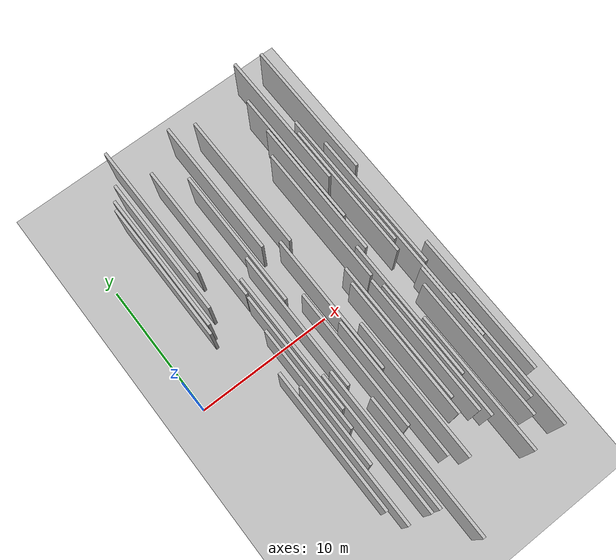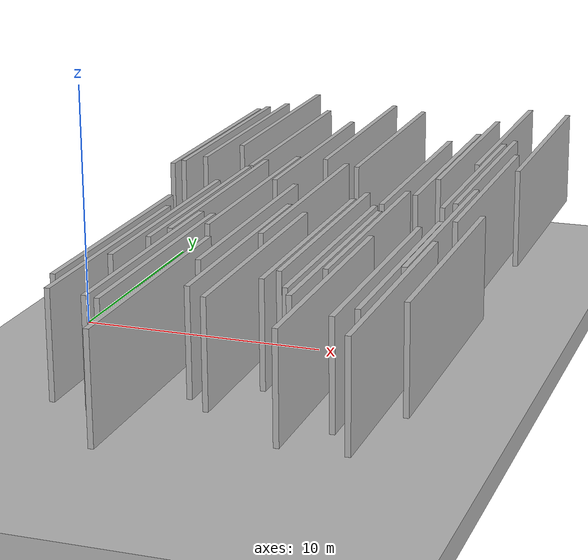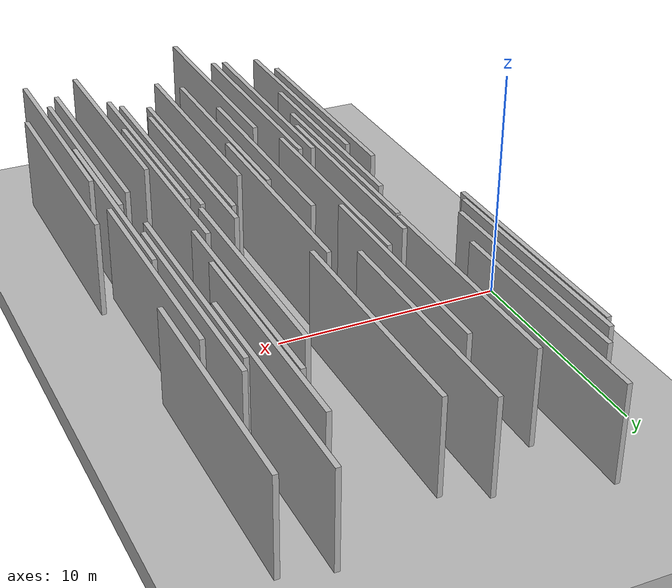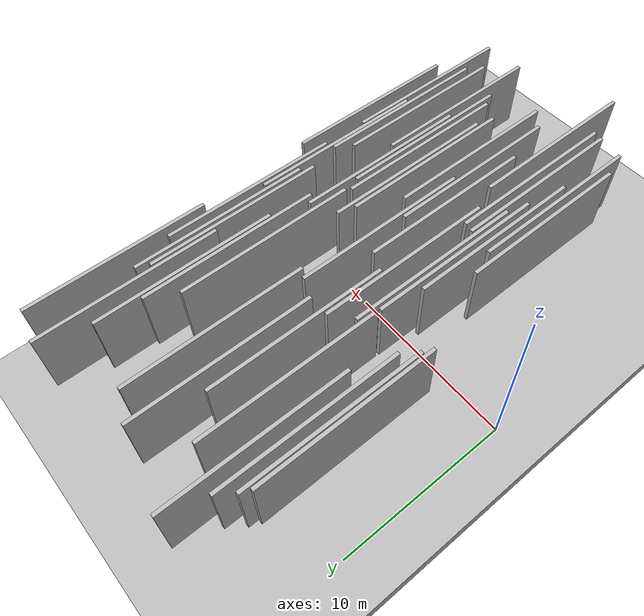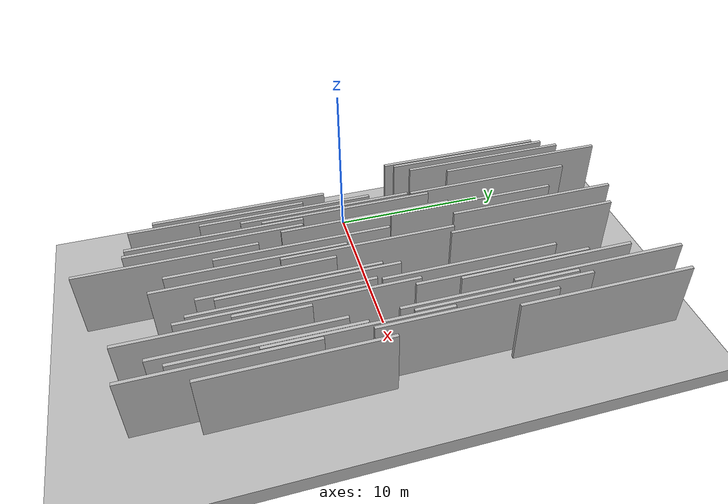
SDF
<?xml version="1.0" encoding="utf-8"?>

<sdf version="1.6">

   <world name="default">

      <gui fullscreen="0">

         <camera name="user_camera">

            <pose>-15 0 4.57585 0 0 0</pose>

            <view_controller>orbit</view_controller>

         </camera>

      </gui>

      <scene>

         <sky>

           <clouds>

             <speed>12</speed>

           </clouds>

         </sky>

         <ambient>0.4 0.4 0.4 1</ambient>

         <background>0.7 0.7 0.7 1</background>

         <shadows>1</shadows>

      </scene>

      <gravity>0 0 -9.8066</gravity>

      <magnetic_field>6e-06 2.3e-05 -4.2e-05</magnetic_field>

      <physics default="0" name="default_physics" type="ode">

         <ode>

            <solver>

               <type>quick</type>

               <iters>10</iters>

               <sor>1.0</sor>

               <use_dynamic_moi_rescaling>0</use_dynamic_moi_rescaling>

            </solver>

            <constraints>

               <cfm>0</cfm>

               <erp>0.2</erp>

               <contact_max_correcting_vel>100</contact_max_correcting_vel>

               <contact_surface_layer>0.001</contact_surface_layer>

            </constraints>

         </ode>

         <max_step_size>0.004</max_step_size>

         <real_time_factor>1</real_time_factor>

         <real_time_update_rate>250</real_time_update_rate>

      </physics>

      <light name="sun" type="directional">

         <cast_shadows>1</cast_shadows>

         <pose>0 0 10 0 0 0</pose>

         <diffuse>0.8 0.8 0.8 1</diffuse>

         <specular>0.2 0.2 0.2 1</specular>

         <attenuation>

            <range>1000</range>

            <constant>0.9</constant>

            <linear>0.01</linear>

            <quadratic>0.001</quadratic>

         </attenuation>

         <direction>-0.5 0.1 -0.9</direction>

      </light>

      <include>

         <name>ground_plane_1</name>

         <uri>model://HANNAS_ground_plane</uri>

         <pose>0 0 0  0 0 0</pose>

      </include>

      <include>

         <name>ground_plane_2</name>

         <uri>model://HANNAS_ground_plane</uri>

         <pose>100 0 0  0 0 0</pose>

      </include>

      <model name="HANNAS_wall_1">

         <static>1</static>

         <pose frame="">5.2713 -8.5533 2.5 0.000000 0.000000 1.570796</pose>

         <link name="link">

            <pose frame="">0 0 2.00 0 0 0</pose>

            <collision name="collision">

               <geometry>

                  <box>

                     <size>10.00 0.2 4.00</size>

                  </box>

               </geometry>

               <max_contacts>10</max_contacts>

               <surface>

                  <contact>

                     <ode/>

                  </contact>

                  <bounce/>

                  <friction>

                     <torsional>

                        <ode/>

                     </torsional>

                     <ode/>

                  </friction>

               </surface>

            </collision>

            <visual name="visual">

               <cast_shadows>0</cast_shadows>

               <geometry>

                  <box>

                     <size>10.00 0.2 4.00</size>

                  </box>

               </geometry>

               <material>

                  <script>

                     <uri>model://HANNAS_wall/materials/scripts</uri>

                     <uri>model://HANNAS_wall/materials/textures</uri>

                     <name>vrc/HANNAS_wall</name>

                  </script>

               </material>

            </visual>

            <self_collide>0</self_collide>

            <enable_wind>0</enable_wind>

            <kinematic>0</kinematic>

         </link>

      </model>

      <model name="HANNAS_wall_2">

         <static>1</static>

         <pose frame="">3.8967 8.5115 2.5 0.000000 0.000000 1.570796</pose>

         <link name="link">

            <pose frame="">0 0 2.00 0 0 0</pose>

            <collision name="collision">

               <geometry>

                  <box>

                     <size>10.00 0.2 4.00</size>

                  </box>

               </geometry>

               <max_contacts>10</max_contacts>

               <surface>

                  <contact>

                     <ode/>

                  </contact>

                  <bounce/>

                  <friction>

                     <torsional>

                        <ode/>

                     </torsional>

                     <ode/>

                  </friction>

               </surface>

            </collision>

            <visual name="visual">

               <cast_shadows>0</cast_shadows>

               <geometry>

                  <box>

                     <size>10.00 0.2 4.00</size>

                  </box>

               </geometry>

               <material>

                  <script>

                     <uri>model://HANNAS_wall/materials/scripts</uri>

                     <uri>model://HANNAS_wall/materials/textures</uri>

                     <name>vrc/HANNAS_wall</name>

                  </script>

               </material>

            </visual>

            <self_collide>0</self_collide>

            <enable_wind>0</enable_wind>

            <kinematic>0</kinematic>

         </link>

      </model>

      <model name="HANNAS_wall_3">

         <static>1</static>

         <pose frame="">16.6424 10.2966 2.5 0.000000 0.000000 1.570796</pose>

         <link name="link">

            <pose frame="">0 0 2.00 0 0 0</pose>

            <collision name="collision">

               <geometry>

                  <box>

                     <size>10.00 0.2 4.00</size>

                  </box>

               </geometry>

               <max_contacts>10</max_contacts>

               <surface>

                  <contact>

                     <ode/>

                  </contact>

                  <bounce/>

                  <friction>

                     <torsional>

                        <ode/>

                     </torsional>

                     <ode/>

                  </friction>

               </surface>

            </collision>

            <visual name="visual">

               <cast_shadows>0</cast_shadows>

               <geometry>

                  <box>

                     <size>10.00 0.2 4.00</size>

                  </box>

               </geometry>

               <material>

                  <script>

                     <uri>model://HANNAS_wall/materials/scripts</uri>

                     <uri>model://HANNAS_wall/materials/textures</uri>

                     <name>vrc/HANNAS_wall</name>

                  </script>

               </material>

            </visual>

            <self_collide>0</self_collide>

            <enable_wind>0</enable_wind>

            <kinematic>0</kinematic>

         </link>

      </model>

      <model name="HANNAS_wall_4">

         <static>1</static>

         <pose frame="">8.7333 9.6387 2.5 0.000000 0.000000 1.570796</pose>

         <link name="link">

            <pose frame="">0 0 2.00 0 0 0</pose>

            <collision name="collision">

               <geometry>

                  <box>

                     <size>10.00 0.2 4.00</size>

                  </box>

               </geometry>

               <max_contacts>10</max_contacts>

               <surface>

                  <contact>

                     <ode/>

                  </contact>

                  <bounce/>

                  <friction>

                     <torsional>

                        <ode/>

                     </torsional>

                     <ode/>

                  </friction>

               </surface>

            </collision>

            <visual name="visual">

               <cast_shadows>0</cast_shadows>

               <geometry>

                  <box>

                     <size>10.00 0.2 4.00</size>

                  </box>

               </geometry>

               <material>

                  <script>

                     <uri>model://HANNAS_wall/materials/scripts</uri>

                     <uri>model://HANNAS_wall/materials/textures</uri>

                     <name>vrc/HANNAS_wall</name>

                  </script>

               </material>

            </visual>

            <self_collide>0</self_collide>

            <enable_wind>0</enable_wind>

            <kinematic>0</kinematic>

         </link>

      </model>

      <model name="HANNAS_wall_5">

         <static>1</static>

         <pose frame="">9.7830 -0.7278 2.5 0.000000 0.000000 1.570796</pose>

         <link name="link">

            <pose frame="">0 0 2.00 0 0 0</pose>

            <collision name="collision">

               <geometry>

                  <box>

                     <size>10.00 0.2 4.00</size>

                  </box>

               </geometry>

               <max_contacts>10</max_contacts>

               <surface>

                  <contact>

                     <ode/>

                  </contact>

                  <bounce/>

                  <friction>

                     <torsional>

                        <ode/>

                     </torsional>

                     <ode/>

                  </friction>

               </surface>

            </collision>

            <visual name="visual">

               <cast_shadows>0</cast_shadows>

               <geometry>

                  <box>

                     <size>10.00 0.2 4.00</size>

                  </box>

               </geometry>

               <material>

                  <script>

                     <uri>model://HANNAS_wall/materials/scripts</uri>

                     <uri>model://HANNAS_wall/materials/textures</uri>

                     <name>vrc/HANNAS_wall</name>

                  </script>

               </material>

            </visual>

            <self_collide>0</self_collide>

            <enable_wind>0</enable_wind>

            <kinematic>0</kinematic>

         </link>

      </model>

      <model name="HANNAS_wall_6">

         <static>1</static>

         <pose frame="">11.8643 -4.5365 2.5 0.000000 0.000000 1.570796</pose>

         <link name="link">

            <pose frame="">0 0 2.00 0 0 0</pose>

            <collision name="collision">

               <geometry>

                  <box>

                     <size>10.00 0.2 4.00</size>

                  </box>

               </geometry>

               <max_contacts>10</max_contacts>

               <surface>

                  <contact>

                     <ode/>

                  </contact>

                  <bounce/>

                  <friction>

                     <torsional>

                        <ode/>

                     </torsional>

                     <ode/>

                  </friction>

               </surface>

            </collision>

            <visual name="visual">

               <cast_shadows>0</cast_shadows>

               <geometry>

                  <box>

                     <size>10.00 0.2 4.00</size>

                  </box>

               </geometry>

               <material>

                  <script>

                     <uri>model://HANNAS_wall/materials/scripts</uri>

                     <uri>model://HANNAS_wall/materials/textures</uri>

                     <name>vrc/HANNAS_wall</name>

                  </script>

               </material>

            </visual>

            <self_collide>0</self_collide>

            <enable_wind>0</enable_wind>

            <kinematic>0</kinematic>

         </link>

      </model>

      <model name="HANNAS_wall_7">

         <static>1</static>

         <pose frame="">9.5290 -6.9343 2.5 0.000000 0.000000 1.570796</pose>

         <link name="link">

            <pose frame="">0 0 2.00 0 0 0</pose>

            <collision name="collision">

               <geometry>

                  <box>

                     <size>10.00 0.2 4.00</size>

                  </box>

               </geometry>

               <max_contacts>10</max_contacts>

               <surface>

                  <contact>

                     <ode/>

                  </contact>

                  <bounce/>

                  <friction>

                     <torsional>

                        <ode/>

                     </torsional>

                     <ode/>

                  </friction>

               </surface>

            </collision>

            <visual name="visual">

               <cast_shadows>0</cast_shadows>

               <geometry>

                  <box>

                     <size>10.00 0.2 4.00</size>

                  </box>

               </geometry>

               <material>

                  <script>

                     <uri>model://HANNAS_wall/materials/scripts</uri>

                     <uri>model://HANNAS_wall/materials/textures</uri>

                     <name>vrc/HANNAS_wall</name>

                  </script>

               </material>

            </visual>

            <self_collide>0</self_collide>

            <enable_wind>0</enable_wind>

            <kinematic>0</kinematic>

         </link>

      </model>

      <model name="HANNAS_wall_8">

         <static>1</static>

         <pose frame="">3.0202 7.1427 2.5 0.000000 0.000000 1.570796</pose>

         <link name="link">

            <pose frame="">0 0 2.00 0 0 0</pose>

            <collision name="collision">

               <geometry>

                  <box>

                     <size>10.00 0.2 4.00</size>

                  </box>

               </geometry>

               <max_contacts>10</max_contacts>

               <surface>

                  <contact>

                     <ode/>

                  </contact>

                  <bounce/>

                  <friction>

                     <torsional>

                        <ode/>

                     </torsional>

                     <ode/>

                  </friction>

               </surface>

            </collision>

            <visual name="visual">

               <cast_shadows>0</cast_shadows>

               <geometry>

                  <box>

                     <size>10.00 0.2 4.00</size>

                  </box>

               </geometry>

               <material>

                  <script>

                     <uri>model://HANNAS_wall/materials/scripts</uri>

                     <uri>model://HANNAS_wall/materials/textures</uri>

                     <name>vrc/HANNAS_wall</name>

                  </script>

               </material>

            </visual>

            <self_collide>0</self_collide>

            <enable_wind>0</enable_wind>

            <kinematic>0</kinematic>

         </link>

      </model>

      <model name="HANNAS_wall_9">

         <static>1</static>

         <pose frame="">8.1527 -11.6367 2.5 0.000000 0.000000 1.570796</pose>

         <link name="link">

            <pose frame="">0 0 2.00 0 0 0</pose>

            <collision name="collision">

               <geometry>

                  <box>

                     <size>10.00 0.2 4.00</size>

                  </box>

               </geometry>

               <max_contacts>10</max_contacts>

               <surface>

                  <contact>

                     <ode/>

                  </contact>

                  <bounce/>

                  <friction>

                     <torsional>

                        <ode/>

                     </torsional>

                     <ode/>

                  </friction>

               </surface>

            </collision>

            <visual name="visual">

               <cast_shadows>0</cast_shadows>

               <geometry>

                  <box>

                     <size>10.00 0.2 4.00</size>

                  </box>

               </geometry>

               <material>

                  <script>

                     <uri>model://HANNAS_wall/materials/scripts</uri>

                     <uri>model://HANNAS_wall/materials/textures</uri>

                     <name>vrc/HANNAS_wall</name>

                  </script>

               </material>

            </visual>

            <self_collide>0</self_collide>

            <enable_wind>0</enable_wind>

            <kinematic>0</kinematic>

         </link>

      </model>

      <model name="HANNAS_wall_10">

         <static>1</static>

         <pose frame="">13.0097 -6.7541 2.5 0.000000 0.000000 1.570796</pose>

         <link name="link">

            <pose frame="">0 0 2.00 0 0 0</pose>

            <collision name="collision">

               <geometry>

                  <box>

                     <size>10.00 0.2 4.00</size>

                  </box>

               </geometry>

               <max_contacts>10</max_contacts>

               <surface>

                  <contact>

                     <ode/>

                  </contact>

                  <bounce/>

                  <friction>

                     <torsional>

                        <ode/>

                     </torsional>

                     <ode/>

                  </friction>

               </surface>

            </collision>

            <visual name="visual">

               <cast_shadows>0</cast_shadows>

               <geometry>

                  <box>

                     <size>10.00 0.2 4.00</size>

                  </box>

               </geometry>

               <material>

                  <script>

                     <uri>model://HANNAS_wall/materials/scripts</uri>

                     <uri>model://HANNAS_wall/materials/textures</uri>

                     <name>vrc/HANNAS_wall</name>

                  </script>

               </material>

            </visual>

            <self_collide>0</self_collide>

            <enable_wind>0</enable_wind>

            <kinematic>0</kinematic>

         </link>

      </model>

      <model name="HANNAS_wall_11">

         <static>1</static>

         <pose frame="">12.6420 -6.0958 2.5 0.000000 0.000000 1.570796</pose>

         <link name="link">

            <pose frame="">0 0 2.00 0 0 0</pose>

            <collision name="collision">

               <geometry>

                  <box>

                     <size>10.00 0.2 4.00</size>

                  </box>

               </geometry>

               <max_contacts>10</max_contacts>

               <surface>

                  <contact>

                     <ode/>

                  </contact>

                  <bounce/>

                  <friction>

                     <torsional>

                        <ode/>

                     </torsional>

                     <ode/>

                  </friction>

               </surface>

            </collision>

            <visual name="visual">

               <cast_shadows>0</cast_shadows>

               <geometry>

                  <box>

                     <size>10.00 0.2 4.00</size>

                  </box>

               </geometry>

               <material>

                  <script>

                     <uri>model://HANNAS_wall/materials/scripts</uri>

                     <uri>model://HANNAS_wall/materials/textures</uri>

                     <name>vrc/HANNAS_wall</name>

                  </script>

               </material>

            </visual>

            <self_collide>0</self_collide>

            <enable_wind>0</enable_wind>

            <kinematic>0</kinematic>

         </link>

      </model>

      <model name="HANNAS_wall_12">

         <static>1</static>

         <pose frame="">6.7252 -8.8303 2.5 0.000000 0.000000 1.570796</pose>

         <link name="link">

            <pose frame="">0 0 2.00 0 0 0</pose>

            <collision name="collision">

               <geometry>

                  <box>

                     <size>10.00 0.2 4.00</size>

                  </box>

               </geometry>

               <max_contacts>10</max_contacts>

               <surface>

                  <contact>

                     <ode/>

                  </contact>

                  <bounce/>

                  <friction>

                     <torsional>

                        <ode/>

                     </torsional>

                     <ode/>

                  </friction>

               </surface>

            </collision>

            <visual name="visual">

               <cast_shadows>0</cast_shadows>

               <geometry>

                  <box>

                     <size>10.00 0.2 4.00</size>

                  </box>

               </geometry>

               <material>

                  <script>

                     <uri>model://HANNAS_wall/materials/scripts</uri>

                     <uri>model://HANNAS_wall/materials/textures</uri>

                     <name>vrc/HANNAS_wall</name>

                  </script>

               </material>

            </visual>

            <self_collide>0</self_collide>

            <enable_wind>0</enable_wind>

            <kinematic>0</kinematic>

         </link>

      </model>

      <model name="HANNAS_wall_13">

         <static>1</static>

         <pose frame="">7.8189 6.1054 2.5 0.000000 0.000000 1.570796</pose>

         <link name="link">

            <pose frame="">0 0 2.00 0 0 0</pose>

            <collision name="collision">

               <geometry>

                  <box>

                     <size>10.00 0.2 4.00</size>

                  </box>

               </geometry>

               <max_contacts>10</max_contacts>

               <surface>

                  <contact>

                     <ode/>

                  </contact>

                  <bounce/>

                  <friction>

                     <torsional>

                        <ode/>

                     </torsional>

                     <ode/>

                  </friction>

               </surface>

            </collision>

            <visual name="visual">

               <cast_shadows>0</cast_shadows>

               <geometry>

                  <box>

                     <size>10.00 0.2 4.00</size>

                  </box>

               </geometry>

               <material>

                  <script>

                     <uri>model://HANNAS_wall/materials/scripts</uri>

                     <uri>model://HANNAS_wall/materials/textures</uri>

                     <name>vrc/HANNAS_wall</name>

                  </script>

               </material>

            </visual>

            <self_collide>0</self_collide>

            <enable_wind>0</enable_wind>

            <kinematic>0</kinematic>

         </link>

      </model>

      <model name="HANNAS_wall_14">

         <static>1</static>

         <pose frame="">15.4493 5.0505 2.5 0.000000 0.000000 1.570796</pose>

         <link name="link">

            <pose frame="">0 0 2.00 0 0 0</pose>

            <collision name="collision">

               <geometry>

                  <box>

                     <size>10.00 0.2 4.00</size>

                  </box>

               </geometry>

               <max_contacts>10</max_contacts>

               <surface>

                  <contact>

                     <ode/>

                  </contact>

                  <bounce/>

                  <friction>

                     <torsional>

                        <ode/>

                     </torsional>

                     <ode/>

                  </friction>

               </surface>

            </collision>

            <visual name="visual">

               <cast_shadows>0</cast_shadows>

               <geometry>

                  <box>

                     <size>10.00 0.2 4.00</size>

                  </box>

               </geometry>

               <material>

                  <script>

                     <uri>model://HANNAS_wall/materials/scripts</uri>

                     <uri>model://HANNAS_wall/materials/textures</uri>

                     <name>vrc/HANNAS_wall</name>

                  </script>

               </material>

            </visual>

            <self_collide>0</self_collide>

            <enable_wind>0</enable_wind>

            <kinematic>0</kinematic>

         </link>

      </model>

      <model name="HANNAS_wall_15">

         <static>1</static>

         <pose frame="">6.4507 -1.1667 2.5 0.000000 0.000000 1.570796</pose>

         <link name="link">

            <pose frame="">0 0 2.00 0 0 0</pose>

            <collision name="collision">

               <geometry>

                  <box>

                     <size>10.00 0.2 4.00</size>

                  </box>

               </geometry>

               <max_contacts>10</max_contacts>

               <surface>

                  <contact>

                     <ode/>

                  </contact>

                  <bounce/>

                  <friction>

                     <torsional>

                        <ode/>

                     </torsional>

                     <ode/>

                  </friction>

               </surface>

            </collision>

            <visual name="visual">

               <cast_shadows>0</cast_shadows>

               <geometry>

                  <box>

                     <size>10.00 0.2 4.00</size>

                  </box>

               </geometry>

               <material>

                  <script>

                     <uri>model://HANNAS_wall/materials/scripts</uri>

                     <uri>model://HANNAS_wall/materials/textures</uri>

                     <name>vrc/HANNAS_wall</name>

                  </script>

               </material>

            </visual>

            <self_collide>0</self_collide>

            <enable_wind>0</enable_wind>

            <kinematic>0</kinematic>

         </link>

      </model>

      <model name="HANNAS_wall_16">

         <static>1</static>

         <pose frame="">16.0371 2.7760 2.5 0.000000 0.000000 1.570796</pose>

         <link name="link">

            <pose frame="">0 0 2.00 0 0 0</pose>

            <collision name="collision">

               <geometry>

                  <box>

                     <size>10.00 0.2 4.00</size>

                  </box>

               </geometry>

               <max_contacts>10</max_contacts>

               <surface>

                  <contact>

                     <ode/>

                  </contact>

                  <bounce/>

                  <friction>

                     <torsional>

                        <ode/>

                     </torsional>

                     <ode/>

                  </friction>

               </surface>

            </collision>

            <visual name="visual">

               <cast_shadows>0</cast_shadows>

               <geometry>

                  <box>

                     <size>10.00 0.2 4.00</size>

                  </box>

               </geometry>

               <material>

                  <script>

                     <uri>model://HANNAS_wall/materials/scripts</uri>

                     <uri>model://HANNAS_wall/materials/textures</uri>

                     <name>vrc/HANNAS_wall</name>

                  </script>

               </material>

            </visual>

            <self_collide>0</self_collide>

            <enable_wind>0</enable_wind>

            <kinematic>0</kinematic>

         </link>

      </model>

      <model name="HANNAS_wall_17">

         <static>1</static>

         <pose frame="">5.7087 -4.6302 2.5 0.000000 0.000000 1.570796</pose>

         <link name="link">

            <pose frame="">0 0 2.00 0 0 0</pose>

            <collision name="collision">

               <geometry>

                  <box>

                     <size>10.00 0.2 4.00</size>

                  </box>

               </geometry>

               <max_contacts>10</max_contacts>

               <surface>

                  <contact>

                     <ode/>

                  </contact>

                  <bounce/>

                  <friction>

                     <torsional>

                        <ode/>

                     </torsional>

                     <ode/>

                  </friction>

               </surface>

            </collision>

            <visual name="visual">

               <cast_shadows>0</cast_shadows>

               <geometry>

                  <box>

                     <size>10.00 0.2 4.00</size>

                  </box>

               </geometry>

               <material>

                  <script>

                     <uri>model://HANNAS_wall/materials/scripts</uri>

                     <uri>model://HANNAS_wall/materials/textures</uri>

                     <name>vrc/HANNAS_wall</name>

                  </script>

               </material>

            </visual>

            <self_collide>0</self_collide>

            <enable_wind>0</enable_wind>

            <kinematic>0</kinematic>

         </link>

      </model>

      <model name="HANNAS_wall_18">

         <static>1</static>

         <pose frame="">10.4403 -7.7712 2.5 0.000000 0.000000 1.570796</pose>

         <link name="link">

            <pose frame="">0 0 2.00 0 0 0</pose>

            <collision name="collision">

               <geometry>

                  <box>

                     <size>10.00 0.2 4.00</size>

                  </box>

               </geometry>

               <max_contacts>10</max_contacts>

               <surface>

                  <contact>

                     <ode/>

                  </contact>

                  <bounce/>

                  <friction>

                     <torsional>

                        <ode/>

                     </torsional>

                     <ode/>

                  </friction>

               </surface>

            </collision>

            <visual name="visual">

               <cast_shadows>0</cast_shadows>

               <geometry>

                  <box>

                     <size>10.00 0.2 4.00</size>

                  </box>

               </geometry>

               <material>

                  <script>

                     <uri>model://HANNAS_wall/materials/scripts</uri>

                     <uri>model://HANNAS_wall/materials/textures</uri>

                     <name>vrc/HANNAS_wall</name>

                  </script>

               </material>

            </visual>

            <self_collide>0</self_collide>

            <enable_wind>0</enable_wind>

            <kinematic>0</kinematic>

         </link>

      </model>

      <model name="HANNAS_wall_19">

         <static>1</static>

         <pose frame="">10.3066 8.9108 2.5 0.000000 0.000000 1.570796</pose>

         <link name="link">

            <pose frame="">0 0 2.00 0 0 0</pose>

            <collision name="collision">

               <geometry>

                  <box>

                     <size>10.00 0.2 4.00</size>

                  </box>

               </geometry>

               <max_contacts>10</max_contacts>

               <surface>

                  <contact>

                     <ode/>

                  </contact>

                  <bounce/>

                  <friction>

                     <torsional>

                        <ode/>

                     </torsional>

                     <ode/>

                  </friction>

               </surface>

            </collision>

            <visual name="visual">

               <cast_shadows>0</cast_shadows>

               <geometry>

                  <box>

                     <size>10.00 0.2 4.00</size>

                  </box>

               </geometry>

               <material>

                  <script>

                     <uri>model://HANNAS_wall/materials/scripts</uri>

                     <uri>model://HANNAS_wall/materials/textures</uri>

                     <name>vrc/HANNAS_wall</name>

                  </script>

               </material>

            </visual>

            <self_collide>0</self_collide>

            <enable_wind>0</enable_wind>

            <kinematic>0</kinematic>

         </link>

      </model>

      <model name="HANNAS_wall_20">

         <static>1</static>

         <pose frame="">11.5906 -5.4856 2.5 0.000000 0.000000 1.570796</pose>

         <link name="link">

            <pose frame="">0 0 2.00 0 0 0</pose>

            <collision name="collision">

               <geometry>

                  <box>

                     <size>10.00 0.2 4.00</size>

                  </box>

               </geometry>

               <max_contacts>10</max_contacts>

               <surface>

                  <contact>

                     <ode/>

                  </contact>

                  <bounce/>

                  <friction>

                     <torsional>

                        <ode/>

                     </torsional>

                     <ode/>

                  </friction>

               </surface>

            </collision>

            <visual name="visual">

               <cast_shadows>0</cast_shadows>

               <geometry>

                  <box>

                     <size>10.00 0.2 4.00</size>

                  </box>

               </geometry>

               <material>

                  <script>

                     <uri>model://HANNAS_wall/materials/scripts</uri>

                     <uri>model://HANNAS_wall/materials/textures</uri>

                     <name>vrc/HANNAS_wall</name>

                  </script>

               </material>

            </visual>

            <self_collide>0</self_collide>

            <enable_wind>0</enable_wind>

            <kinematic>0</kinematic>

         </link>

      </model>

      <model name="HANNAS_wall_21">

         <static>1</static>

         <pose frame="">14.9636 -8.2210 2.5 0.000000 0.000000 1.570796</pose>

         <link name="link">

            <pose frame="">0 0 2.00 0 0 0</pose>

            <collision name="collision">

               <geometry>

                  <box>

                     <size>10.00 0.2 4.00</size>

                  </box>

               </geometry>

               <max_contacts>10</max_contacts>

               <surface>

                  <contact>

                     <ode/>

                  </contact>

                  <bounce/>

                  <friction>

                     <torsional>

                        <ode/>

                     </torsional>

                     <ode/>

                  </friction>

               </surface>

            </collision>

            <visual name="visual">

               <cast_shadows>0</cast_shadows>

               <geometry>

                  <box>

                     <size>10.00 0.2 4.00</size>

                  </box>

               </geometry>

               <material>

                  <script>

                     <uri>model://HANNAS_wall/materials/scripts</uri>

                     <uri>model://HANNAS_wall/materials/textures</uri>

                     <name>vrc/HANNAS_wall</name>

                  </script>

               </material>

            </visual>

            <self_collide>0</self_collide>

            <enable_wind>0</enable_wind>

            <kinematic>0</kinematic>

         </link>

      </model>

      <model name="HANNAS_wall_22">

         <static>1</static>

         <pose frame="">6.1634 7.8232 2.5 0.000000 0.000000 1.570796</pose>

         <link name="link">

            <pose frame="">0 0 2.00 0 0 0</pose>

            <collision name="collision">

               <geometry>

                  <box>

                     <size>10.00 0.2 4.00</size>

                  </box>

               </geometry>

               <max_contacts>10</max_contacts>

               <surface>

                  <contact>

                     <ode/>

                  </contact>

                  <bounce/>

                  <friction>

                     <torsional>

                        <ode/>

                     </torsional>

                     <ode/>

                  </friction>

               </surface>

            </collision>

            <visual name="visual">

               <cast_shadows>0</cast_shadows>

               <geometry>

                  <box>

                     <size>10.00 0.2 4.00</size>

                  </box>

               </geometry>

               <material>

                  <script>

                     <uri>model://HANNAS_wall/materials/scripts</uri>

                     <uri>model://HANNAS_wall/materials/textures</uri>

                     <name>vrc/HANNAS_wall</name>

                  </script>

               </material>

            </visual>

            <self_collide>0</self_collide>

            <enable_wind>0</enable_wind>

            <kinematic>0</kinematic>

         </link>

      </model>

      <model name="HANNAS_wall_23">

         <static>1</static>

         <pose frame="">7.5373 -0.2787 2.5 0.000000 0.000000 1.570796</pose>

         <link name="link">

            <pose frame="">0 0 2.00 0 0 0</pose>

            <collision name="collision">

               <geometry>

                  <box>

                     <size>10.00 0.2 4.00</size>

                  </box>

               </geometry>

               <max_contacts>10</max_contacts>

               <surface>

                  <contact>

                     <ode/>

                  </contact>

                  <bounce/>

                  <friction>

                     <torsional>

                        <ode/>

                     </torsional>

                     <ode/>

                  </friction>

               </surface>

            </collision>

            <visual name="visual">

               <cast_shadows>0</cast_shadows>

               <geometry>

                  <box>

                     <size>10.00 0.2 4.00</size>

                  </box>

               </geometry>

               <material>

                  <script>

                     <uri>model://HANNAS_wall/materials/scripts</uri>

                     <uri>model://HANNAS_wall/materials/textures</uri>

                     <name>vrc/HANNAS_wall</name>

                  </script>

               </material>

            </visual>

            <self_collide>0</self_collide>

            <enable_wind>0</enable_wind>

            <kinematic>0</kinematic>

         </link>

      </model>

      <model name="HANNAS_wall_24">

         <static>1</static>

         <pose frame="">13.6921 5.7042 2.5 0.000000 0.000000 1.570796</pose>

         <link name="link">

            <pose frame="">0 0 2.00 0 0 0</pose>

            <collision name="collision">

               <geometry>

                  <box>

                     <size>10.00 0.2 4.00</size>

                  </box>

               </geometry>

               <max_contacts>10</max_contacts>

               <surface>

                  <contact>

                     <ode/>

                  </contact>

                  <bounce/>

                  <friction>

                     <torsional>

                        <ode/>

                     </torsional>

                     <ode/>

                  </friction>

               </surface>

            </collision>

            <visual name="visual">

               <cast_shadows>0</cast_shadows>

               <geometry>

                  <box>

                     <size>10.00 0.2 4.00</size>

                  </box>

               </geometry>

               <material>

                  <script>

                     <uri>model://HANNAS_wall/materials/scripts</uri>

                     <uri>model://HANNAS_wall/materials/textures</uri>

                     <name>vrc/HANNAS_wall</name>

                  </script>

               </material>

            </visual>

            <self_collide>0</self_collide>

            <enable_wind>0</enable_wind>

            <kinematic>0</kinematic>

         </link>

      </model>

      <model name="HANNAS_wall_25">

         <static>1</static>

         <pose frame="">13.2804 -3.8519 2.5 0.000000 0.000000 1.570796</pose>

         <link name="link">

            <pose frame="">0 0 2.00 0 0 0</pose>

            <collision name="collision">

               <geometry>

                  <box>

                     <size>10.00 0.2 4.00</size>

                  </box>

               </geometry>

               <max_contacts>10</max_contacts>

               <surface>

                  <contact>

                     <ode/>

                  </contact>

                  <bounce/>

                  <friction>

                     <torsional>

                        <ode/>

                     </torsional>

                     <ode/>

                  </friction>

               </surface>

            </collision>

            <visual name="visual">

               <cast_shadows>0</cast_shadows>

               <geometry>

                  <box>

                     <size>10.00 0.2 4.00</size>

                  </box>

               </geometry>

               <material>

                  <script>

                     <uri>model://HANNAS_wall/materials/scripts</uri>

                     <uri>model://HANNAS_wall/materials/textures</uri>

                     <name>vrc/HANNAS_wall</name>

                  </script>

               </material>

            </visual>

            <self_collide>0</self_collide>

            <enable_wind>0</enable_wind>

            <kinematic>0</kinematic>

         </link>

      </model>

      <model name="HANNAS_wall_26">

         <static>1</static>

         <pose frame="">7.2387 -8.9486 2.5 0.000000 0.000000 1.570796</pose>

         <link name="link">

            <pose frame="">0 0 2.00 0 0 0</pose>

            <collision name="collision">

               <geometry>

                  <box>

                     <size>10.00 0.2 4.00</size>

                  </box>

               </geometry>

               <max_contacts>10</max_contacts>

               <surface>

                  <contact>

                     <ode/>

                  </contact>

                  <bounce/>

                  <friction>

                     <torsional>

                        <ode/>

                     </torsional>

                     <ode/>

                  </friction>

               </surface>

            </collision>

            <visual name="visual">

               <cast_shadows>0</cast_shadows>

               <geometry>

                  <box>

                     <size>10.00 0.2 4.00</size>

                  </box>

               </geometry>

               <material>

                  <script>

                     <uri>model://HANNAS_wall/materials/scripts</uri>

                     <uri>model://HANNAS_wall/materials/textures</uri>

                     <name>vrc/HANNAS_wall</name>

                  </script>

               </material>

            </visual>

            <self_collide>0</self_collide>

            <enable_wind>0</enable_wind>

            <kinematic>0</kinematic>

         </link>

      </model>

      <model name="HANNAS_wall_27">

         <static>1</static>

         <pose frame="">15.7401 -2.8285 2.5 0.000000 0.000000 1.570796</pose>

         <link name="link">

            <pose frame="">0 0 2.00 0 0 0</pose>

            <collision name="collision">

               <geometry>

                  <box>

                     <size>10.00 0.2 4.00</size>

                  </box>

               </geometry>

               <max_contacts>10</max_contacts>

               <surface>

                  <contact>

                     <ode/>

                  </contact>

                  <bounce/>

                  <friction>

                     <torsional>

                        <ode/>

                     </torsional>

                     <ode/>

                  </friction>

               </surface>

            </collision>

            <visual name="visual">

               <cast_shadows>0</cast_shadows>

               <geometry>

                  <box>

                     <size>10.00 0.2 4.00</size>

                  </box>

               </geometry>

               <material>

                  <script>

                     <uri>model://HANNAS_wall/materials/scripts</uri>

                     <uri>model://HANNAS_wall/materials/textures</uri>

                     <name>vrc/HANNAS_wall</name>

                  </script>

               </material>

            </visual>

            <self_collide>0</self_collide>

            <enable_wind>0</enable_wind>

            <kinematic>0</kinematic>

         </link>

      </model>

      <model name="HANNAS_wall_28">

         <static>1</static>

         <pose frame="">12.8195 4.1362 2.5 0.000000 0.000000 1.570796</pose>

         <link name="link">

            <pose frame="">0 0 2.00 0 0 0</pose>

            <collision name="collision">

               <geometry>

                  <box>

                     <size>10.00 0.2 4.00</size>

                  </box>

               </geometry>

               <max_contacts>10</max_contacts>

               <surface>

                  <contact>

                     <ode/>

                  </contact>

                  <bounce/>

                  <friction>

                     <torsional>

                        <ode/>

                     </torsional>

                     <ode/>

                  </friction>

               </surface>

            </collision>

            <visual name="visual">

               <cast_shadows>0</cast_shadows>

               <geometry>

                  <box>

                     <size>10.00 0.2 4.00</size>

                  </box>

               </geometry>

               <material>

                  <script>

                     <uri>model://HANNAS_wall/materials/scripts</uri>

                     <uri>model://HANNAS_wall/materials/textures</uri>

                     <name>vrc/HANNAS_wall</name>

                  </script>

               </material>

            </visual>

            <self_collide>0</self_collide>

            <enable_wind>0</enable_wind>

            <kinematic>0</kinematic>

         </link>

      </model>

      <model name="HANNAS_wall_29">

         <static>1</static>

         <pose frame="">4.7874 -7.1767 2.5 0.000000 0.000000 1.570796</pose>

         <link name="link">

            <pose frame="">0 0 2.00 0 0 0</pose>

            <collision name="collision">

               <geometry>

                  <box>

                     <size>10.00 0.2 4.00</size>

                  </box>

               </geometry>

               <max_contacts>10</max_contacts>

               <surface>

                  <contact>

                     <ode/>

                  </contact>

                  <bounce/>

                  <friction>

                     <torsional>

                        <ode/>

                     </torsional>

                     <ode/>

                  </friction>

               </surface>

            </collision>

            <visual name="visual">

               <cast_shadows>0</cast_shadows>

               <geometry>

                  <box>

                     <size>10.00 0.2 4.00</size>

                  </box>

               </geometry>

               <material>

                  <script>

                     <uri>model://HANNAS_wall/materials/scripts</uri>

                     <uri>model://HANNAS_wall/materials/textures</uri>

                     <name>vrc/HANNAS_wall</name>

                  </script>

               </material>

            </visual>

            <self_collide>0</self_collide>

            <enable_wind>0</enable_wind>

            <kinematic>0</kinematic>

         </link>

      </model>

      <model name="HANNAS_wall_30">

         <static>1</static>

         <pose frame="">3.2756 7.6736 2.5 0.000000 0.000000 1.570796</pose>

         <link name="link">

            <pose frame="">0 0 2.00 0 0 0</pose>

            <collision name="collision">

               <geometry>

                  <box>

                     <size>10.00 0.2 4.00</size>

                  </box>

               </geometry>

               <max_contacts>10</max_contacts>

               <surface>

                  <contact>

                     <ode/>

                  </contact>

                  <bounce/>

                  <friction>

                     <torsional>

                        <ode/>

                     </torsional>

                     <ode/>

                  </friction>

               </surface>

            </collision>

            <visual name="visual">

               <cast_shadows>0</cast_shadows>

               <geometry>

                  <box>

                     <size>10.00 0.2 4.00</size>

                  </box>

               </geometry>

               <material>

                  <script>

                     <uri>model://HANNAS_wall/materials/scripts</uri>

                     <uri>model://HANNAS_wall/materials/textures</uri>

                     <name>vrc/HANNAS_wall</name>

                  </script>

               </material>

            </visual>

            <self_collide>0</self_collide>

            <enable_wind>0</enable_wind>

            <kinematic>0</kinematic>

         </link>

      </model>

      <model name="HANNAS_wall_31">

         <static>1</static>

         <pose frame="">4.6607 10.7076 2.5 0.000000 0.000000 1.570796</pose>

         <link name="link">

            <pose frame="">0 0 2.00 0 0 0</pose>

            <collision name="collision">

               <geometry>

                  <box>

                     <size>10.00 0.2 4.00</size>

                  </box>

               </geometry>

               <max_contacts>10</max_contacts>

               <surface>

                  <contact>

                     <ode/>

                  </contact>

                  <bounce/>

                  <friction>

                     <torsional>

                        <ode/>

                     </torsional>

                     <ode/>

                  </friction>

               </surface>

            </collision>

            <visual name="visual">

               <cast_shadows>0</cast_shadows>

               <geometry>

                  <box>

                     <size>10.00 0.2 4.00</size>

                  </box>

               </geometry>

               <material>

                  <script>

                     <uri>model://HANNAS_wall/materials/scripts</uri>

                     <uri>model://HANNAS_wall/materials/textures</uri>

                     <name>vrc/HANNAS_wall</name>

                  </script>

               </material>

            </visual>

            <self_collide>0</self_collide>

            <enable_wind>0</enable_wind>

            <kinematic>0</kinematic>

         </link>

      </model>

      <model name="HANNAS_wall_32">

         <static>1</static>

         <pose frame="">15.9786 -9.7247 2.5 0.000000 0.000000 1.570796</pose>

         <link name="link">

            <pose frame="">0 0 2.00 0 0 0</pose>

            <collision name="collision">

               <geometry>

                  <box>

                     <size>10.00 0.2 4.00</size>

                  </box>

               </geometry>

               <max_contacts>10</max_contacts>

               <surface>

                  <contact>

                     <ode/>

                  </contact>

                  <bounce/>

                  <friction>

                     <torsional>

                        <ode/>

                     </torsional>

                     <ode/>

                  </friction>

               </surface>

            </collision>

            <visual name="visual">

               <cast_shadows>0</cast_shadows>

               <geometry>

                  <box>

                     <size>10.00 0.2 4.00</size>

                  </box>

               </geometry>

               <material>

                  <script>

                     <uri>model://HANNAS_wall/materials/scripts</uri>

                     <uri>model://HANNAS_wall/materials/textures</uri>

                     <name>vrc/HANNAS_wall</name>

                  </script>

               </material>

            </visual>

            <self_collide>0</self_collide>

            <enable_wind>0</enable_wind>

            <kinematic>0</kinematic>

         </link>

      </model>

      <model name="HANNAS_wall_33">

         <static>1</static>

         <pose frame="">8.8136 -4.2513 2.5 0.000000 0.000000 1.570796</pose>

         <link name="link">

            <pose frame="">0 0 2.00 0 0 0</pose>

            <collision name="collision">

               <geometry>

                  <box>

                     <size>10.00 0.2 4.00</size>

                  </box>

               </geometry>

               <max_contacts>10</max_contacts>

               <surface>

                  <contact>

                     <ode/>

                  </contact>

                  <bounce/>

                  <friction>

                     <torsional>

                        <ode/>

                     </torsional>

                     <ode/>

                  </friction>

               </surface>

            </collision>

            <visual name="visual">

               <cast_shadows>0</cast_shadows>

               <geometry>

                  <box>

                     <size>10.00 0.2 4.00</size>

                  </box>

               </geometry>

               <material>

                  <script>

                     <uri>model://HANNAS_wall/materials/scripts</uri>

                     <uri>model://HANNAS_wall/materials/textures</uri>

                     <name>vrc/HANNAS_wall</name>

                  </script>

               </material>

            </visual>

            <self_collide>0</self_collide>

            <enable_wind>0</enable_wind>

            <kinematic>0</kinematic>

         </link>

      </model>

      <model name="HANNAS_wall_34">

         <static>1</static>

         <pose frame="">14.8475 10.7508 2.5 0.000000 0.000000 1.570796</pose>

         <link name="link">

            <pose frame="">0 0 2.00 0 0 0</pose>

            <collision name="collision">

               <geometry>

                  <box>

                     <size>10.00 0.2 4.00</size>

                  </box>

               </geometry>

               <max_contacts>10</max_contacts>

               <surface>

                  <contact>

                     <ode/>

                  </contact>

                  <bounce/>

                  <friction>

                     <torsional>

                        <ode/>

                     </torsional>

                     <ode/>

                  </friction>

               </surface>

            </collision>

            <visual name="visual">

               <cast_shadows>0</cast_shadows>

               <geometry>

                  <box>

                     <size>10.00 0.2 4.00</size>

                  </box>

               </geometry>

               <material>

                  <script>

                     <uri>model://HANNAS_wall/materials/scripts</uri>

                     <uri>model://HANNAS_wall/materials/textures</uri>

                     <name>vrc/HANNAS_wall</name>

                  </script>

               </material>

            </visual>

            <self_collide>0</self_collide>

            <enable_wind>0</enable_wind>

            <kinematic>0</kinematic>

         </link>

      </model>

      <model name="HANNAS_wall_35">

         <static>1</static>

         <pose frame="">13.6410 -9.7942 2.5 0.000000 0.000000 1.570796</pose>

         <link name="link">

            <pose frame="">0 0 2.00 0 0 0</pose>

            <collision name="collision">

               <geometry>

                  <box>

                     <size>10.00 0.2 4.00</size>

                  </box>

               </geometry>

               <max_contacts>10</max_contacts>

               <surface>

                  <contact>

                     <ode/>

                  </contact>

                  <bounce/>

                  <friction>

                     <torsional>

                        <ode/>

                     </torsional>

                     <ode/>

                  </friction>

               </surface>

            </collision>

            <visual name="visual">

               <cast_shadows>0</cast_shadows>

               <geometry>

                  <box>

                     <size>10.00 0.2 4.00</size>

                  </box>

               </geometry>

               <material>

                  <script>

                     <uri>model://HANNAS_wall/materials/scripts</uri>

                     <uri>model://HANNAS_wall/materials/textures</uri>

                     <name>vrc/HANNAS_wall</name>

                  </script>

               </material>

            </visual>

            <self_collide>0</self_collide>

            <enable_wind>0</enable_wind>

            <kinematic>0</kinematic>

         </link>

      </model>

      <model name="HANNAS_wall_36">

         <static>1</static>

         <pose frame="">15.5293 -7.3405 2.5 0.000000 0.000000 1.570796</pose>

         <link name="link">

            <pose frame="">0 0 2.00 0 0 0</pose>

            <collision name="collision">

               <geometry>

                  <box>

                     <size>10.00 0.2 4.00</size>

                  </box>

               </geometry>

               <max_contacts>10</max_contacts>

               <surface>

                  <contact>

                     <ode/>

                  </contact>

                  <bounce/>

                  <friction>

                     <torsional>

                        <ode/>

                     </torsional>

                     <ode/>

                  </friction>

               </surface>

            </collision>

            <visual name="visual">

               <cast_shadows>0</cast_shadows>

               <geometry>

                  <box>

                     <size>10.00 0.2 4.00</size>

                  </box>

               </geometry>

               <material>

                  <script>

                     <uri>model://HANNAS_wall/materials/scripts</uri>

                     <uri>model://HANNAS_wall/materials/textures</uri>

                     <name>vrc/HANNAS_wall</name>

                  </script>

               </material>

            </visual>

            <self_collide>0</self_collide>

            <enable_wind>0</enable_wind>

            <kinematic>0</kinematic>

         </link>

      </model>

      <model name="HANNAS_wall_37">

         <static>1</static>

         <pose frame="">16.8328 -6.2084 2.5 0.000000 0.000000 1.570796</pose>

         <link name="link">

            <pose frame="">0 0 2.00 0 0 0</pose>

            <collision name="collision">

               <geometry>

                  <box>

                     <size>10.00 0.2 4.00</size>

                  </box>

               </geometry>

               <max_contacts>10</max_contacts>

               <surface>

                  <contact>

                     <ode/>

                  </contact>

                  <bounce/>

                  <friction>

                     <torsional>

                        <ode/>

                     </torsional>

                     <ode/>

                  </friction>

               </surface>

            </collision>

            <visual name="visual">

               <cast_shadows>0</cast_shadows>

               <geometry>

                  <box>

                     <size>10.00 0.2 4.00</size>

                  </box>

               </geometry>

               <material>

                  <script>

                     <uri>model://HANNAS_wall/materials/scripts</uri>

                     <uri>model://HANNAS_wall/materials/textures</uri>

                     <name>vrc/HANNAS_wall</name>

                  </script>

               </material>

            </visual>

            <self_collide>0</self_collide>

            <enable_wind>0</enable_wind>

            <kinematic>0</kinematic>

         </link>

      </model>

      <model name="HANNAS_wall_38">

         <static>1</static>

         <pose frame="">6.1279 -2.3520 2.5 0.000000 0.000000 1.570796</pose>

         <link name="link">

            <pose frame="">0 0 2.00 0 0 0</pose>

            <collision name="collision">

               <geometry>

                  <box>

                     <size>10.00 0.2 4.00</size>

                  </box>

               </geometry>

               <max_contacts>10</max_contacts>

               <surface>

                  <contact>

                     <ode/>

                  </contact>

                  <bounce/>

                  <friction>

                     <torsional>

                        <ode/>

                     </torsional>

                     <ode/>

                  </friction>

               </surface>

            </collision>

            <visual name="visual">

               <cast_shadows>0</cast_shadows>

               <geometry>

                  <box>

                     <size>10.00 0.2 4.00</size>

                  </box>

               </geometry>

               <material>

                  <script>

                     <uri>model://HANNAS_wall/materials/scripts</uri>

                     <uri>model://HANNAS_wall/materials/textures</uri>

                     <name>vrc/HANNAS_wall</name>

                  </script>

               </material>

            </visual>

            <self_collide>0</self_collide>

            <enable_wind>0</enable_wind>

            <kinematic>0</kinematic>

         </link>

      </model>

      <model name="HANNAS_wall_39">

         <static>1</static>

         <pose frame="">13.9327 8.1411 2.5 0.000000 0.000000 1.570796</pose>

         <link name="link">

            <pose frame="">0 0 2.00 0 0 0</pose>

            <collision name="collision">

               <geometry>

                  <box>

                     <size>10.00 0.2 4.00</size>

                  </box>

               </geometry>

               <max_contacts>10</max_contacts>

               <surface>

                  <contact>

                     <ode/>

                  </contact>

                  <bounce/>

                  <friction>

                     <torsional>

                        <ode/>

                     </torsional>

                     <ode/>

                  </friction>

               </surface>

            </collision>

            <visual name="visual">

               <cast_shadows>0</cast_shadows>

               <geometry>

                  <box>

                     <size>10.00 0.2 4.00</size>

                  </box>

               </geometry>

               <material>

                  <script>

                     <uri>model://HANNAS_wall/materials/scripts</uri>

                     <uri>model://HANNAS_wall/materials/textures</uri>

                     <name>vrc/HANNAS_wall</name>

                  </script>

               </material>

            </visual>

            <self_collide>0</self_collide>

            <enable_wind>0</enable_wind>

            <kinematic>0</kinematic>

         </link>

      </model>

      <model name="HANNAS_wall_40">

         <static>1</static>

         <pose frame="">15.1204 4.3725 2.5 0.000000 0.000000 1.570796</pose>

         <link name="link">

            <pose frame="">0 0 2.00 0 0 0</pose>

            <collision name="collision">

               <geometry>

                  <box>

                     <size>10.00 0.2 4.00</size>

                  </box>

               </geometry>

               <max_contacts>10</max_contacts>

               <surface>

                  <contact>

                     <ode/>

                  </contact>

                  <bounce/>

                  <friction>

                     <torsional>

                        <ode/>

                     </torsional>

                     <ode/>

                  </friction>

               </surface>

            </collision>

            <visual name="visual">

               <cast_shadows>0</cast_shadows>

               <geometry>

                  <box>

                     <size>10.00 0.2 4.00</size>

                  </box>

               </geometry>

               <material>

                  <script>

                     <uri>model://HANNAS_wall/materials/scripts</uri>

                     <uri>model://HANNAS_wall/materials/textures</uri>

                     <name>vrc/HANNAS_wall</name>

                  </script>

               </material>

            </visual>

            <self_collide>0</self_collide>

            <enable_wind>0</enable_wind>

            <kinematic>0</kinematic>

         </link>

      </model>

   </world>

</sdf>
